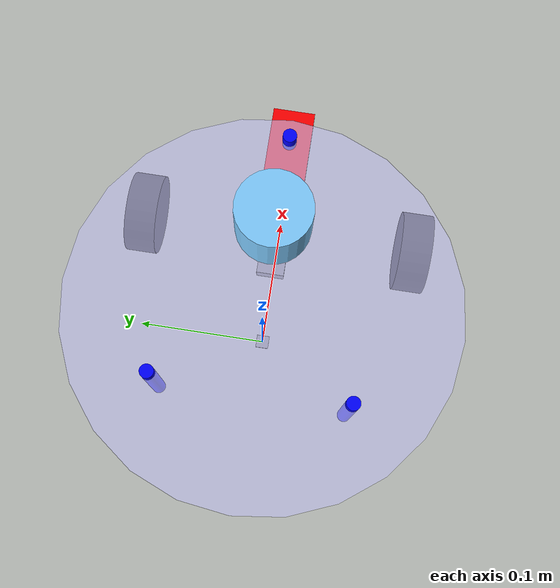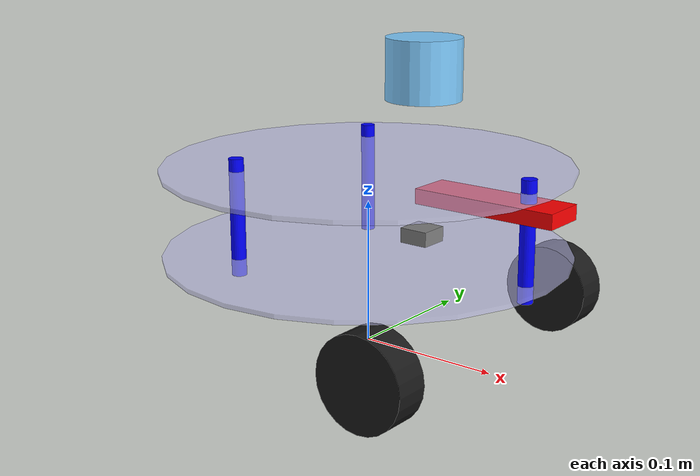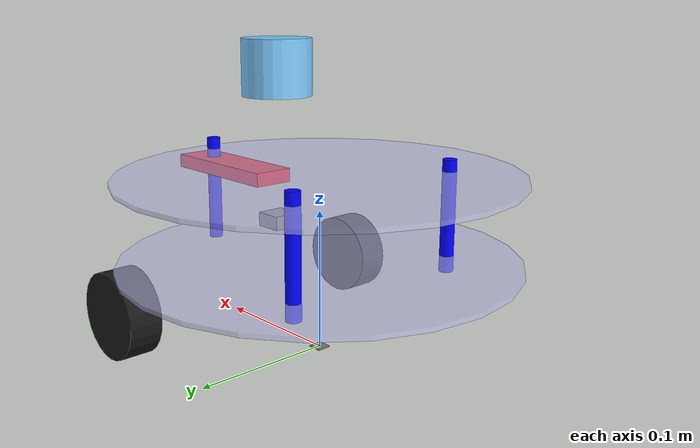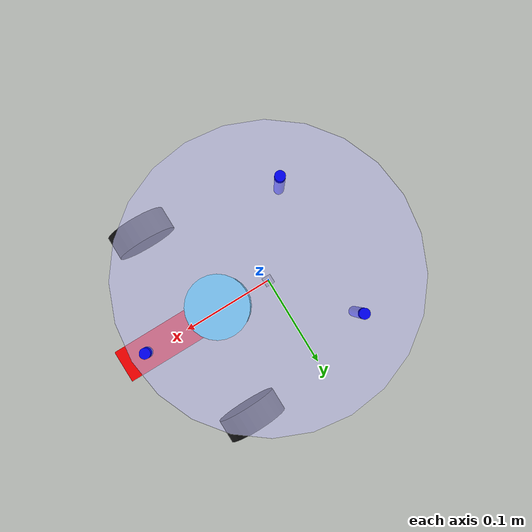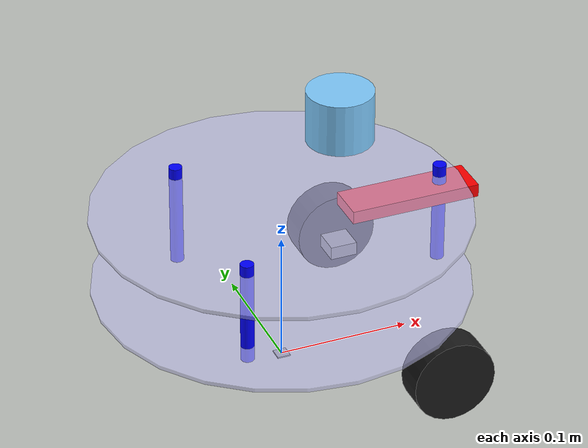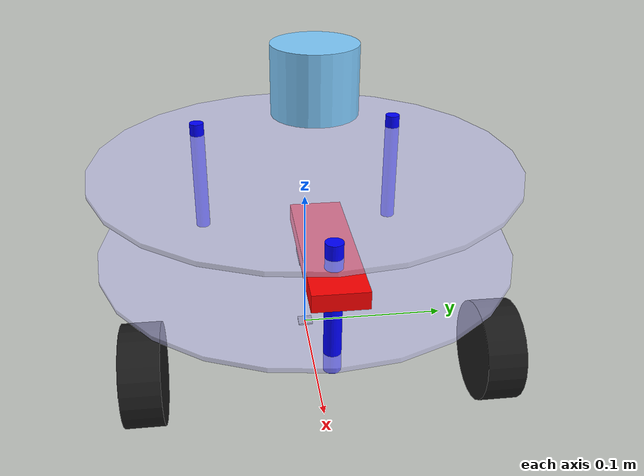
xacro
<?xml version="1.0"?>
<robot name="dome_x1" xmlns:xacro="http://www.ros.org/wiki/xacro">

  <!-- Parameters -->
  <xacro:property name="plate_diameter" value="0.280" />
  <xacro:property name="plate_thickness" value="0.003" />
  <xacro:property name="bottom_plate_height" value="0.065" />
  <xacro:property name="top_plate_height" value="0.125" />
  <xacro:property name="base_link_x_offset" value="0.085" />
  <xacro:property name="wheel_base" value="0.215" />
  <xacro:property name="wheel_diameter" value="0.0625" />
  <xacro:property name="wheel_width" value="0.024" />
  <xacro:property name="support_post_diameter" value="0.010" />
  <xacro:property name="support_post_height" value="0.080" />
  <xacro:property name="laser_x_offset" value="-0.040" />
  <xacro:property name="laser_z_offset" value="0.130" />
  <xacro:property name="imu_x_offset" value="-0.040" />
  <xacro:property name="imu_z_offset" value="0.020" />
  <xacro:property name="front_marker_x_offset" value="0.015" />
  <xacro:property name="front_marker_z_offset" value="0.050" />

  <!-- Materials -->
  <material name="clear_acrylic">
    <color rgba="0.8 0.8 1.0 0.6"/>
  </material>

  <material name="blue">
    <color rgba="0.0 0.0 1.0 1.0"/>
  </material>

  <material name="light_blue">
    <color rgba="0.5 0.8 1.0 1.0"/>
  </material>

  <material name="grey">
    <color rgba="0.5 0.5 0.5 1.0"/>
  </material>

  <material name="red">
    <color rgba="1.0 0.0 0.0 1.0"/>
  </material>

  <material name="black">
    <color rgba="0.1 0.1 0.1 1.0"/>
  </material>

  <!-- Base footprint (ground projection) -->
  <link name="base_footprint">
    <visual>
      <origin xyz="0 0 0" rpy="0 0 0"/>
      <geometry>
        <box size="0.01 0.01 0.001"/>
      </geometry>
      <material name="grey"/>
    </visual>
  </link>

  <!-- Base link (main robot body) -->
  <link name="base_link"/>

  <joint name="base_footprint_to_base_link" type="fixed">
    <parent link="base_footprint"/>
    <child link="base_link"/>
    <origin xyz="${base_link_x_offset} 0 ${bottom_plate_height}" rpy="0 0 0"/>
  </joint>

  <!-- Bottom plate -->
  <link name="bottom_plate">
    <visual>
      <origin xyz="0 0 0" rpy="0 0 0"/>
      <geometry>
        <cylinder radius="${plate_diameter/2}" length="${plate_thickness}"/>
      </geometry>
      <material name="clear_acrylic"/>
    </visual>
    <collision>
      <origin xyz="0 0 0" rpy="0 0 0"/>
      <geometry>
        <cylinder radius="${plate_diameter/2}" length="${plate_thickness}"/>
      </geometry>
    </collision>
  </link>

  <joint name="base_link_to_bottom_plate" type="fixed">
    <parent link="base_link"/>
    <child link="bottom_plate"/>
    <origin xyz="${-base_link_x_offset} 0 0" rpy="0 0 0"/>
  </joint>

  <!-- Top plate -->
  <link name="top_plate">
    <visual>
      <origin xyz="0 0 0" rpy="0 0 0"/>
      <geometry>
        <cylinder radius="${plate_diameter/2}" length="${plate_thickness}"/>
      </geometry>
      <material name="clear_acrylic"/>
    </visual>
    <collision>
      <origin xyz="0 0 0" rpy="0 0 0"/>
      <geometry>
        <cylinder radius="${plate_diameter/2}" length="${plate_thickness}"/>
      </geometry>
    </collision>
  </link>

  <joint name="base_link_to_top_plate" type="fixed">
    <parent link="base_link"/>
    <child link="top_plate"/>
    <origin xyz="${-base_link_x_offset} 0 ${top_plate_height - bottom_plate_height}" rpy="0 0 0"/>
  </joint>

  <!-- Support post macro -->
  <xacro:macro name="support_post" params="name x_pos y_pos">
    <link name="${name}">
      <visual>
        <origin xyz="0 0 0" rpy="0 0 0"/>
        <geometry>
          <cylinder radius="${support_post_diameter/2}" length="${support_post_height}"/>
        </geometry>
        <material name="blue"/>
      </visual>
      <collision>
        <origin xyz="0 0 0" rpy="0 0 0"/>
        <geometry>
          <cylinder radius="${support_post_diameter/2}" length="${support_post_diameter}"/>
        </geometry>
      </collision>
    </link>

    <joint name="base_link_to_${name}" type="fixed">
      <parent link="base_link"/>
      <child link="${name}"/>
      <origin xyz="${x_pos} ${y_pos} ${(top_plate_height - bottom_plate_height)/2}" rpy="0 0 0"/>
    </joint>
  </xacro:macro>

  <!-- Support posts -->
  <xacro:support_post name="support_post_1" x_pos="0.040" y_pos="0"/>
  <xacro:support_post name="support_post_2" x_pos="-0.140" y_pos="0.070"/>
  <xacro:support_post name="support_post_3" x_pos="-0.140" y_pos="-0.070"/>

  <!-- Wheel macro -->
  <xacro:macro name="wheel" params="side reflect">
    <link name="${side}_wheel">
      <visual>
        <origin xyz="0 0 0" rpy="1.57 0 0"/>
        <geometry>
          <cylinder radius="${wheel_diameter/2}" length="${wheel_width}"/>
        </geometry>
        <material name="black"/>
      </visual>
      <collision>
        <origin xyz="0 0 0" rpy="1.57 0 0"/>
        <geometry>
          <cylinder radius="${wheel_diameter/2}" length="${wheel_width}"/>
        </geometry>
      </collision>
    </link>

    <joint name="base_link_to_${side}_wheel" type="continuous">
      <parent link="base_link"/>
      <child link="${side}_wheel"/>
      <origin xyz="0 ${reflect * wheel_base/2} ${-wheel_diameter/2 - 0.005}" rpy="0 0 0"/>
      <axis xyz="0 1 0"/>
    </joint>
  </xacro:macro>

  <!-- Wheels -->
  <xacro:wheel side="left" reflect="1"/>
  <xacro:wheel side="right" reflect="-1"/>

  <!-- laser -->
  <link name="laser">
    <visual>
      <origin xyz="0 0 0" rpy="0 0 0"/>
      <geometry>
        <cylinder radius="0.025" length="0.040"/>
      </geometry>
      <material name="light_blue"/>
    </visual>
    <collision>
      <origin xyz="0 0 0" rpy="0 0 0"/>
      <geometry>
        <cylinder radius="0.025" length="0.040"/>
      </geometry>
    </collision>
  </link>

  <joint name="base_link_to_laser" type="fixed">
    <parent link="base_link"/>
    <child link="laser"/>
    <origin xyz="${laser_x_offset} 0 ${laser_z_offset}" rpy="0 0 ${-pi/2}"/>
  </joint>

  <!-- IMU -->
  <link name="imu">
    <visual>
      <origin xyz="0 0 0" rpy="0 0 0"/>
      <geometry>
        <box size="0.020 0.020 0.010"/>
      </geometry>
      <material name="grey"/>
    </visual>
    <collision>
      <origin xyz="0 0 0" rpy="0 0 0"/>
      <geometry>
        <box size="0.020 0.020 0.010"/>
      </geometry>
    </collision>
  </link>

  <joint name="base_link_to_imu" type="fixed">
    <parent link="base_link"/>
    <child link="imu"/>
    <origin xyz="${imu_x_offset} 0 ${imu_z_offset}" rpy="0 0 0"/>
  </joint>

  <!-- Front marker -->
  <link name="front_marker">
    <visual>
      <origin xyz="0 0 0" rpy="0 0 0"/>
      <geometry>
        <box size="0.10 0.030 0.010"/>
      </geometry>
      <material name="red"/>
    </visual>
  </link>

  <joint name="base_link_to_front_marker" type="fixed">
    <parent link="base_link"/>
    <child link="front_marker"/>
    <origin xyz="${front_marker_x_offset} 0 ${front_marker_z_offset}" rpy="0 0 0"/>
  </joint>

</robot>
